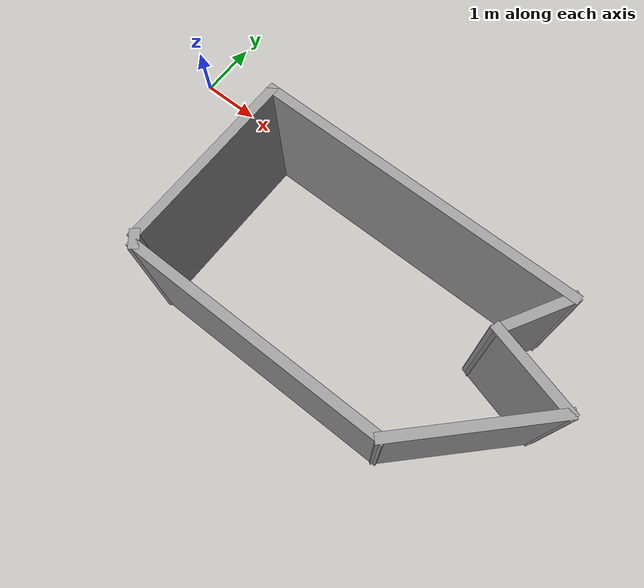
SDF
<?xml version='1.0'?>
<sdf version='1.7'>
  <model name='test1'>
    <pose>4.05503 -1.7549 0 0 -0 0</pose>
    <link name='Wall_0'>
      <collision name='Wall_0_Collision'>
        <geometry>
          <box>
            <size>3 0.15 2.5</size>
          </box>
        </geometry>
        <pose>0 0 1.25 0 -0 0</pose>
      </collision>
      <visual name='Wall_0_Visual'>
        <pose>0 0 1.25 0 -0 0</pose>
        <geometry>
          <box>
            <size>3 0.15 2.5</size>
          </box>
        </geometry>
        <material>
          <script>
            <uri>file://media/materials/scripts/gazebo.material</uri>
            <name>Gazebo/Grey</name>
          </script>
          <ambient>1 1 1 1</ambient>
        </material>
        <meta>
          <layer>0</layer>
        </meta>
      </visual>
      <pose>-1.90503 -0.1101 0 0 -0 1.5708</pose>
    </link>
    <link name='Wall_1'>
      <collision name='Wall_1_Collision'>
        <geometry>
          <box>
            <size>5.25 0.15 2.5</size>
          </box>
        </geometry>
        <pose>0 0 1.25 0 -0 0</pose>
      </collision>
      <visual name='Wall_1_Visual'>
        <pose>0 0 1.25 0 -0 0</pose>
        <geometry>
          <box>
            <size>5.25 0.15 2.5</size>
          </box>
        </geometry>
        <material>
          <script>
            <uri>file://media/materials/scripts/gazebo.material</uri>
            <name>Gazebo/Grey</name>
          </script>
          <ambient>1 1 1 1</ambient>
        </material>
        <meta>
          <layer>0</layer>
        </meta>
      </visual>
      <pose>0.644967 1.3149 0 0 -0 0</pose>
    </link>
    <link name='Wall_2'>
      <collision name='Wall_2_Collision'>
        <geometry>
          <box>
            <size>1.25 0.15 2.5</size>
          </box>
        </geometry>
        <pose>0 0 1.25 0 -0 0</pose>
      </collision>
      <visual name='Wall_2_Visual'>
        <pose>0 0 1.25 0 -0 0</pose>
        <geometry>
          <box>
            <size>1.25 0.15 2.5</size>
          </box>
        </geometry>
        <material>
          <script>
            <uri>file://media/materials/scripts/gazebo.material</uri>
            <name>Gazebo/Grey</name>
          </script>
          <ambient>1 1 1 1</ambient>
        </material>
        <meta>
          <layer>0</layer>
        </meta>
      </visual>
      <pose>2.91997 0.838587 0 0 -0 -2.0944</pose>
    </link>
    <link name='Wall_3'>
      <collision name='Wall_3_Collision'>
        <geometry>
          <box>
            <size>1.5 0.15 2.5</size>
          </box>
        </geometry>
        <pose>0 0 1.25 0 -0 0</pose>
      </collision>
      <visual name='Wall_3_Visual'>
        <pose>0 0 1.25 0 -0 0</pose>
        <geometry>
          <box>
            <size>1.5 0.15 2.5</size>
          </box>
        </geometry>
        <material>
          <script>
            <uri>file://media/materials/scripts/gazebo.material</uri>
            <name>Gazebo/Grey</name>
          </script>
          <ambient>1 1 1 1</ambient>
        </material>
        <meta>
          <layer>0</layer>
        </meta>
      </visual>
      <pose>3.29697 0.18757 0 0 -0 -0.261799</pose>
    </link>
    <link name='Wall_4'>
      <collision name='Wall_4_Collision'>
        <geometry>
          <box>
            <size>2.5 0.15 2.5</size>
          </box>
        </geometry>
        <pose>0 0 1.25 0 -0 0</pose>
      </collision>
      <visual name='Wall_4_Visual'>
        <pose>0 0 1.25 0 -0 0</pose>
        <geometry>
          <box>
            <size>2.5 0.15 2.5</size>
          </box>
        </geometry>
        <material>
          <script>
            <uri>file://media/materials/scripts/gazebo.material</uri>
            <name>Gazebo/Grey</name>
          </script>
          <ambient>1 1 1 1</ambient>
        </material>
        <meta>
          <layer>0</layer>
        </meta>
      </visual>
      <pose>3.11812 -0.817984 0 0 -0 -2.35619</pose>
    </link>
    <link name='Wall_5'>
      <collision name='Wall_5_Collision'>
        <geometry>
          <box>
            <size>4.25 0.15 2.5</size>
          </box>
        </geometry>
        <pose>0 0 1.25 0 -0 0</pose>
      </collision>
      <visual name='Wall_5_Visual'>
        <pose>0 0 1.25 0 -0 0</pose>
        <geometry>
          <box>
            <size>4.25 0.15 2.5</size>
          </box>
        </geometry>
        <material>
          <script>
            <uri>file://media/materials/scripts/gazebo.material</uri>
            <name>Gazebo/Grey</name>
          </script>
          <ambient>1 1 1 1</ambient>
        </material>
        <meta>
          <layer>0</layer>
        </meta>
      </visual>
      <pose>0.237266 -1.64883 0 0 -0 3.14159</pose>
    </link>
    <link name='Wall_6'>
      <collision name='Wall_6_Collision'>
        <geometry>
          <box>
            <size>0.296474 0.15 2.5</size>
          </box>
        </geometry>
        <pose>0 0 1.25 0 -0 0</pose>
      </collision>
      <visual name='Wall_6_Visual'>
        <pose>0 0 1.25 0 -0 0</pose>
        <geometry>
          <box>
            <size>0.296474 0.15 2.5</size>
          </box>
        </geometry>
        <material>
          <script>
            <uri>file://media/materials/scripts/gazebo.material</uri>
            <name>Gazebo/Grey</name>
          </script>
          <ambient>1 1 1 1</ambient>
        </material>
        <meta>
          <layer>0</layer>
        </meta>
      </visual>
      <pose>-1.85888 -1.59197 0 0 -0 2.25253</pose>
    </link>
    <static>1</static>
  </model>
</sdf>
